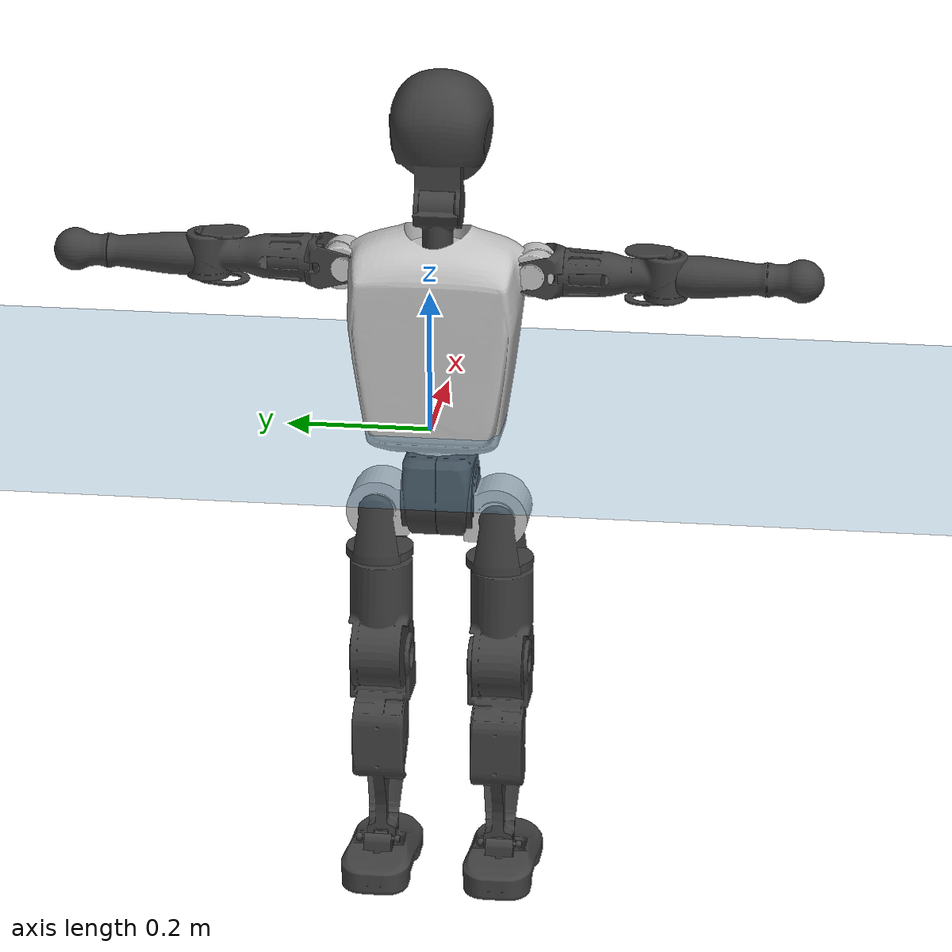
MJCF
<mujoco model="T1">
  <compiler angle="radian" assetdir="assets" balanceinertia="true" inertiafromgeom="false"/>

  <option timestep="0.005" density="1.2" viscosity="2e-05"/>

  <size nkey="1"/>

  <visual>
    <quality shadowsize="8192"/>
    <map shadowclip="0.5"/>
  </visual>

  <default>
    <default class="/">
      <joint armature="0.01" damping="0.01" frictionloss="0.1"/>
      <geom contype="0" conaffinity="0" group="1" solref="-1000 -80"/>
      <site size="0.01 0.005 0.005" group="5"/>
      <general forcelimited="true" biastype="affine" gainprm="25" biasprm="0 -25 -0.6"/>
      <default class="t1">
        <geom rgba="0.25 0.25 0.25 1"/>
        <default class="visual">
          <geom type="mesh" group="2"/>
        </default>
        <default class="collision">
          <geom group="3"/>
        </default>
        <default class="foot">
          <geom size="0.1115 0.05 0.015" type="box" condim="6" group="4" priority="1" solimp="0.015 1 0.015"/>
        </default>
        <default class="reward_collision_sphere">
          <geom group="5" rgba="1 0 0 1"/>
        </default>
      </default>
    </default>
  </default>

  <asset>
    <texture type="skybox" colorspace="auto" name="//unnamed_texture_0" builtin="gradient" rgb1="0.95 0.95 0.95" rgb2="0.95 0.95 0.95" width="100" height="600"/>
    <texture type="2d" colorspace="auto" name="texplane" builtin="checker" rgb1="0.345 0.575 0.748" rgb2="0.345 0.575 0.748" markrgb="1 1 1" width="512" height="512"/>
    <material name="MatPlane" class="/" texture="texplane" texuniform="true" texrepeat="2 2" specular="0.9"/>
    <mesh name="Trunk" class="/" file="Trunk.stl"/>
    <mesh name="H1" class="/" file="H1.stl"/>
    <mesh name="H2" class="/" file="H2.stl"/>
    <mesh name="AL1" class="/" file="AL1.stl"/>
    <mesh name="AL2" class="/" file="AL2.stl"/>
    <mesh name="AL3" class="/" file="AL3.stl"/>
    <mesh name="left_hand_link" class="/" file="left_hand_link.stl"/>
    <mesh name="AR1" class="/" file="AR1.stl"/>
    <mesh name="AR2" class="/" file="AR2.stl"/>
    <mesh name="AR3" class="/" file="AR3.stl"/>
    <mesh name="right_hand_link" class="/" file="right_hand_link.stl"/>
    <mesh name="Waist" class="/" file="Waist.stl"/>
    <mesh name="Hip_Pitch_Left" class="/" file="Hip_Pitch_Left.stl"/>
    <mesh name="Hip_Roll_Left" class="/" file="Hip_Roll_Left.stl"/>
    <mesh name="Hip_Yaw_Left" class="/" file="Hip_Yaw_Left.stl"/>
    <mesh name="Shank_Left" class="/" file="Shank_Left.stl"/>
    <mesh name="Ankle_Cross_Left" class="/" file="Ankle_Cross_Left.stl"/>
    <mesh name="left_foot_link" class="/" file="left_foot_link.stl"/>
    <mesh name="Hip_Pitch_Right" class="/" file="Hip_Pitch_Right.stl"/>
    <mesh name="Hip_Roll_Right" class="/" file="Hip_Roll_Right.stl"/>
    <mesh name="Hip_Yaw_Right" class="/" file="Hip_Yaw_Right.stl"/>
    <mesh name="Shank_Right" class="/" file="Shank_Right.stl"/>
    <mesh name="Ankle_Cross_Right" class="/" file="Ankle_Cross_Right.stl"/>
    <mesh name="right_foot_link" class="/" file="right_foot_link.stl"/>
  </asset>

  <worldbody>
    <geom name="floor" class="/" size="100 100 0.125" type="plane" group="0" material="MatPlane"/>
    <light name="toplight_shadow" class="/" pos="0 0 5" dir="0.0990148 0.0990148 -0.990148" type="directional" ambient="0.04 0.04 0.04" diffuse="0.55 0.55 0.55" specular="0.12 0.12 0.12"/>
    <light name="toplight_fill" class="/" pos="0 0 5" dir="0.0990148 0.0990148 -0.990148" type="directional" castshadow="false" ambient="0.04 0.04 0.04" diffuse="0.3 0.3 0.3" specular="0.08 0.08 0.08"/>
    <body name="trunk" childclass="t1" pos="0.000189198 -0.00223966 -0.000851133" quat="0.999999 0.000477195 0.000134397 -0.00132557">
      <inertial pos="0.0532228 -0.00197731 0.107073" quat="0.999838 -0.00045531 -0.0112727 -0.013999" mass="9.6121" diaginertia="0.091975 0.0259319 0.0632363"/>
      <joint name="//unnamed_joint_0" type="free" armature="0" damping="0" frictionloss="0"/>
      <geom name="//unnamed_geom_1" class="visual" rgba="0.76 0.76 0.76 1" mesh="Trunk"/>
      <geom name="//unnamed_geom_2" class="collision" size="0.0705385 0.0940513 0.141077" pos="0.0595282 0 0.122707" type="box"/>
      <geom name="//unnamed_geom_3" class="reward_collision_sphere" size="0.108159" pos="0.0595282 0 0.102256"/>
      <geom name="//unnamed_geom_4" class="reward_collision_sphere" size="0.0141077" pos="0.0595282 0.0685814 0"/>
      <geom name="//unnamed_geom_5" class="reward_collision_sphere" size="0.0141077" pos="0.0595282 -0.0685814 0"/>
      <geom name="//unnamed_geom_6" class="reward_collision_sphere" size="0.0141077" pos="0.0595282 0.0863318 0.184061"/>
      <geom name="//unnamed_geom_7" class="reward_collision_sphere" size="0.0141077" pos="0.0595282 -0.0863318 0.184061"/>
      <site name="imu" pos="0.0141158 -0.000616759 -0.0140583" size="0.00940513"/>
      <camera name="track" pos="0 -1.61368 0" quat="0.707107 0.707107 0 0" mode="trackcom"/>
      <camera name="ego_camera" pos="0.121041 0 0.429476" quat="-0.5 -0.5 0.5 0.5"/>
      <body name="H1" pos="0.0585474 -0.000279864 0.246317" quat="1 0.00010246 0.000177801 -0.000112684">
        <inertial pos="-0.00185875 -0.000466098 0.0586609" quat="0.76299 -0.0127295 0.00321167 0.646277" mass="0.365435" diaginertia="0.000225338 7.71129e-05 0.000166558"/>
        <joint name="AAHead_yaw" pos="0 0 0" axis="0.00223502 -0.00232713 0.999995" stiffness="0.00773236" range="-1.51164 1.56122" armature="0.0104648" damping="0.00510333" frictionloss="0.105611"/>
        <geom name="//unnamed_geom_8" class="visual" mesh="H1"/>
        <body name="H2" pos="-0.00298922 -0.0015485 0.0630647" quat="1 0.000717386 -0.000245187 -0.000158959">
          <inertial pos="0.00973453 -0.00219402 0.099039" quat="0.988703 0.102714 -0.0844312 -0.0691908" mass="0.532104" diaginertia="0.00191185 0.000637202 0.00191974"/>
          <joint name="Head_pitch" pos="0 0 0" axis="0.00181083 -0.999995 -0.002668" range="-1.23768 0.350518" armature="0.0106873" damping="0" frictionloss="0.0892072"/>
          <geom name="//unnamed_geom_9" class="visual" mesh="H2"/>
          <geom name="//unnamed_geom_10" class="collision" size="0.075241" pos="0.00992137 0 0.112482"/>
          <geom name="//unnamed_geom_11" class="reward_collision_sphere" size="0.0846461" pos="0.0198427 0 0.102256"/>
        </body>
      </body>
      <body name="AL1" pos="0.0576521 0.0850387 0.221778" quat="0.999999 0.000671405 0.000219238 0.00081831">
        <inertial pos="-0.00385853 0.0351911 0.00069823" quat="0.504058 0.495227 -0.504686 0.495952" mass="0.42843" diaginertia="0.00127246 0.000418319 0.000307068"/>
        <joint name="Left_Shoulder_Pitch" pos="0 0 0" axis="-3.93427e-05 0.999854 0.0170727" range="-3.35361 1.26328" armature="0.00959401" damping="0" frictionloss="0.104923"/>
        <geom name="//unnamed_geom_12" class="visual" rgba="0.76 0.76 0.76 1" mesh="AL1"/>
        <body name="AL2" pos="-0.00131806 0.0402764 0.000875831" quat="1 -0.000321502 -0.000239847 -0.000342318">
          <inertial pos="0.00229693 0.0330411 -0.00241718" quat="0.490924 0.511932 -0.48472 0.511826" mass="0.139277" diaginertia="0.000397524 0.000121381 0.00019782"/>
          <joint name="Left_Shoulder_Roll" pos="0 0 0" axis="-0.999997 -0.00217931 0.0014818" range="-1.53036 1.73265" armature="0.0104747" damping="0.00390695" frictionloss="0.0928883"/>
          <geom name="//unnamed_geom_13" class="visual" mesh="AL2"/>
          <body name="AL3" pos="0.00185952 0.0486413 0.00252652" quat="1 -7.29579e-05 -2.0328e-05 -9.80402e-06">
            <inertial pos="0.00219978 0.0666112 0.000733162" quat="0.704216 0.709885 -0.011689 -0.00248948" mass="0.794999" diaginertia="0.0123431 0.00420853 0.000646068"/>
            <joint name="Left_Elbow_Pitch" pos="0 0 0" axis="-0.00237552 -0.99994 -0.0107349" range="-2.31317 2.23711" armature="0.0100209" damping="0.0147552" frictionloss="0.0949732"/>
            <geom name="//unnamed_geom_14" class="visual" mesh="AL3"/>
            <geom name="//unnamed_geom_15" class="collision" size="0.0282154 0.0705385" pos="0 0.040342 0" quat="0.707105 0.707108 0 0" type="cylinder"/>
            <geom name="//unnamed_geom_16" class="reward_collision_sphere" size="0.0338585"/>
            <body name="left_hand_link" pos="0.000614789 0.118273 -0.0020277" quat="0.999999 -0.000894925 -0.000513594 2.06843e-05">
              <inertial pos="-0.00209952 0.0903231 0.000149141" quat="0.707952 0.706261 -1.87309e-05 -0.000204285" mass="0.271581" diaginertia="0.00762339 0.00284904 0.000248921"/>
              <joint name="Left_Elbow_Yaw" pos="0 0 0" axis="0.00184795 0.00168813 0.999997" range="-2.43735 -0.0332979" armature="0.00987636" damping="0.0217099" frictionloss="0.0952432"/>
              <geom name="//unnamed_geom_17" class="visual" mesh="left_hand_link"/>
              <geom name="//unnamed_geom_18" class="collision" size="0.0282154 0.0822949" pos="0 0.104889 0" quat="0.707105 0.707108 0 0" type="cylinder"/>
              <geom name="//unnamed_geom_19" class="reward_collision_sphere" size="0.0470256"/>
              <geom name="//unnamed_geom_20" class="reward_collision_sphere" size="0.0329179" pos="0 0.0887524 0"/>
              <geom name="//unnamed_geom_21" class="reward_collision_sphere" size="0.0329179" pos="0 0.173471 0"/>
            </body>
          </body>
        </body>
      </body>
      <body name="AR1" pos="0.0579567 -0.0872636 0.222706" quat="1 0.000598237 0.000584049 -0.000186784">
        <inertial pos="-0.00336327 -0.0378926 7.74834e-05" quat="0.515425 0.492226 -0.50162 0.490334" mass="0.429885" diaginertia="0.00123651 0.000430994 0.000322362"/>
        <joint name="Right_Shoulder_Pitch" pos="0 0 0" axis="-0.00460801 -0.999872 0.0153115" range="-1.21825 3.26326" armature="0.0106362" damping="0.00288701" frictionloss="0.0843167"/>
        <geom name="//unnamed_geom_22" class="visual" rgba="0.76 0.76 0.76 1" mesh="AR1"/>
        <body name="AR2" pos="0.0015736 -0.0339907 -0.0025169" quat="0.999999 -0.000365162 0.00123747 0.000293315">
          <inertial pos="0.00124327 -0.0315484 -4.58285e-07" quat="0.511778 0.494873 -0.510992 0.481739" mass="0.129082" diaginertia="0.000385146 0.000121698 0.000197975"/>
          <joint name="Right_Shoulder_Roll" pos="0 0 0" axis="-0.999978 -0.000125951 0.00667847" stiffness="0.00259314" range="-1.71243 1.59393" armature="0.00949219" damping="0.0134471" frictionloss="0.10097"/>
          <geom name="//unnamed_geom_23" class="visual" mesh="AR2"/>
          <body name="AR3" pos="0.00233523 -0.048115 -0.00135677" quat="1 -1.52694e-05 1.10497e-05 1.25467e-06">
            <inertial pos="-0.0010705 -0.0713808 -0.00136875" quat="0.710704 0.703381 -0.000235303 -0.0124582" mass="0.854162" diaginertia="0.0124056 0.0044031 0.000720643"/>
            <joint name="Right_Elbow_Pitch" pos="0 0 0" axis="-0.0107511 0.999922 0.00628991" stiffness="0.00428209" range="-2.32113 2.21816" armature="0.00815528" damping="0.00545124" frictionloss="0.106894"/>
            <geom name="//unnamed_geom_24" class="visual" mesh="AR3"/>
            <geom name="//unnamed_geom_25" class="collision" size="0.0282154 0.0705385" pos="0 -0.040342 0" quat="0.707105 0.707108 0 0" type="cylinder"/>
            <geom name="//unnamed_geom_26" class="reward_collision_sphere" size="0.0338585"/>
            <body name="right_hand_link" pos="-5.74309e-07 -0.118417 0.00126074" quat="0.999999 -0.000791108 0.000157701 -0.00108171">
              <inertial pos="-0.00132137 -0.0905168 0.00322023" quat="0.706286 0.707927 9.45707e-05 -3.58884e-05" mass="0.267724" diaginertia="0.00773607 0.00267792 0.000233411"/>
              <joint name="Right_Elbow_Yaw" pos="0 0 0" axis="-0.00520778 -0.0083135 0.999952" range="0.0119948 2.49541" armature="0.0107433" damping="0" frictionloss="0.107347"/>
              <geom name="//unnamed_geom_27" class="visual" mesh="right_hand_link"/>
              <geom name="//unnamed_geom_28" class="collision" size="0.0282154 0.0822949" pos="0 -0.104889 0" quat="0.707105 0.707108 0 0" type="cylinder"/>
              <geom name="//unnamed_geom_29" class="reward_collision_sphere" size="0.0470256"/>
              <geom name="//unnamed_geom_30" class="reward_collision_sphere" size="0.0329179" pos="0 -0.0887524 0"/>
              <geom name="//unnamed_geom_31" class="reward_collision_sphere" size="0.0329179" pos="0 -0.173471 0"/>
            </body>
          </body>
        </body>
      </body>
      <body name="Waist" pos="0.0624235 -0.0042004 -0.115989" quat="1 -0.000197767 0.000314317 -0.000283883">
        <inertial pos="8.31947e-05 -0.000602211 0.00672265" quat="0.983288 0.000240683 -0.181776 -0.0100867" mass="2.10896" diaginertia="0.00499848 0.00179805 0.00517199"/>
        <joint name="Waist" pos="0 0 0" axis="0.00334297 -0.0114188 0.999929" range="-1.58426 1.51962" armature="0.0092403" damping="0.021649" frictionloss="0.106427"/>
        <geom name="//unnamed_geom_32" class="visual" mesh="Waist"/>
        <body name="Hip_Pitch_Left" pos="0.000387812 0.085646 8.20713e-05" quat="1 -0.000355962 -0.000299278 -0.000665731">
          <inertial pos="0.00127576 -0.00856413 -0.0178765" quat="0.975024 0.22164 0.0142704 0.000680561" mass="0.86092" diaginertia="0.00172773 0.00050773 0.00141714"/>
          <joint name="Left_Hip_Pitch" pos="0 0 0" axis="-0.00542788 0.999961 0.00692687" range="-1.79743 1.61139" armature="0.0104214" damping="0" frictionloss="0.0944585"/>
          <geom name="//unnamed_geom_33" class="visual" rgba="0.76 0.76 0.76 1" mesh="Hip_Pitch_Left"/>
          <body name="Hip_Roll_Left" pos="0.000150209 0.000885382 -0.0185453" quat="1 3.65947e-05 4.49983e-05 -0.00097334">
            <inertial pos="-0.0017111 0.000355797 -0.0554775" quat="0.707248 -0.00877746 -0.00326747 0.706904" mass="0.314531" diaginertia="0.00168706 0.000503466 0.00056113"/>
            <joint name="Left_Hip_Roll" pos="0 0 0" axis="-0.999968 -0.00193673 0.0077797" stiffness="0.00750472" range="-1.53412 0.194605" armature="0.0083965" damping="0.016635" frictionloss="0.0967853"/>
            <geom name="//unnamed_geom_34" class="visual" mesh="Hip_Roll_Left"/>
            <geom name="//unnamed_geom_35" class="reward_collision_sphere" size="0.0517282"/>
            <body name="Hip_Yaw_Left" pos="0.00287867 -0.00119651 -0.0867019" quat="1 0.000560017 -8.12396e-05 -2.49055e-05">
              <inertial pos="-0.00774058 -0.000533805 -0.0909749" quat="0.690775 -0.0278611 -0.0336942 0.721747" mass="1.71022" diaginertia="0.0248258 0.00848733 0.00281412"/>
              <joint name="Left_Hip_Yaw" pos="0 0 0" axis="-8.73597e-05 1.51192e-05 -1" range="-1.06767 1.01469" armature="0.00945324" damping="0.0187006" frictionloss="0.089326"/>
              <geom name="//unnamed_geom_36" class="visual" mesh="Hip_Yaw_Left"/>
              <geom name="//unnamed_geom_37" class="collision" size="0.0470256 0.075241" type="cylinder"/>
              <body name="Shank_Left" pos="-0.0136183 -0.00266313 -0.139716" quat="1 1.50196e-06 5.86007e-05 -0.000189339">
                <inertial pos="-0.0071152 -0.0021418 -0.126117" quat="0.996793 -0.00785349 -0.0261511 0.0752144" mass="1.53165" diaginertia="0.0345288 0.0121742 0.00208219"/>
                <joint name="Left_Knee_Pitch" pos="0 0 0" axis="-6.38077e-05 1 1.1606e-05" range="0.0188271 2.29353" armature="0.01055" damping="0" frictionloss="0.0943324"/>
                <geom name="//unnamed_geom_38" class="visual" mesh="Shank_Left"/>
                <geom name="//unnamed_geom_39" class="collision" size="0.0470256 0.0705385" pos="0 0 -0.122707" type="cylinder"/>
                <geom name="//unnamed_geom_40" class="reward_collision_sphere" size="0.0611333"/>
                <body name="Ankle_Cross_Left" pos="0.00188009 0.00238344 -0.289618" quat="0.999999 0.000964399 -0.000584909 -0.000512791">
                  <inertial pos="-0.00563059 -0.00149105 -0.00717345" quat="0.445321 0.539331 0.557439 0.447296" mass="0.0607755" diaginertia="2.78381e-05 9.09664e-06 1.31707e-05"/>
                  <joint name="Left_Ankle_Pitch" pos="0 0 0" axis="0.00477161 0.999922 -0.0115394" range="-0.882848 0.362498" armature="0.00883828" damping="0.0112276" frictionloss="0.0894118"/>
                  <geom name="//unnamed_geom_41" class="visual" mesh="Ankle_Cross_Left"/>
                  <body name="left_foot_link" pos="-0.00278474 -0.0023688 -0.0133298" quat="1 0.000252323 0.000135175 0.000177091">
                    <inertial pos="0.00220771 0.00121429 -0.00766705" quat="8.49131e-06 0.620742 -2.91114e-05 0.784015" mass="0.563271" diaginertia="0.00260808 0.000808508 0.00240575"/>
                    <joint name="Left_Ankle_Roll" pos="0 0 0" axis="-0.999981 0.00384803 -0.0048228" stiffness="0.00539102" range="-0.450634 0.445347" armature="0.00809148" damping="0" frictionloss="0.0920931"/>
                    <geom name="//unnamed_geom_42" class="visual" mesh="left_foot_link"/>
                    <geom name="left_foot" class="foot" size="0.0843502 0.043938 0.0144366" pos="0.00992137 0 -0.0153384"/>
                    <geom name="//unnamed_geom_44" class="reward_collision_sphere" size="0.0489067" pos="0.00992137 0 -0.0153384"/>
                    <geom name="//unnamed_geom_45" class="reward_collision_sphere" size="0.0282154" pos="0.094253 -0.0185573 -0.0153384"/>
                    <geom name="//unnamed_geom_46" class="reward_collision_sphere" size="0.0282154" pos="-0.0694496 -0.0185573 -0.0153384"/>
                    <site name="left_foot" class="foot" pos="0.00992137 0 -0.0153384" size="0.00940513"/>
                  </body>
                </body>
              </body>
            </body>
          </body>
        </body>
        <body name="Hip_Pitch_Right" pos="-0.00312043 -0.0826941 -0.00222511" quat="1 -2.58966e-05 0.000569931 0.00069094">
          <inertial pos="0.00123095 0.00486339 -0.0182521" quat="0.971051 -0.238668 0.00973489 0.00151505" mass="0.852997" diaginertia="0.00168414 0.000482277 0.00134144"/>
          <joint name="Right_Hip_Pitch" pos="0 0 0" axis="-0.00668309 -0.999962 0.00552575" range="-1.62936 1.80104" armature="0.00842029" damping="0.00510985" frictionloss="0.103436"/>
          <geom name="//unnamed_geom_47" class="visual" rgba="0.76 0.76 0.76 1" mesh="Hip_Pitch_Right"/>
          <body name="Hip_Roll_Right" pos="-0.000838317 -0.00222508 -0.0219198" quat="1 -0.000178808 -0.000204748 -0.000243541">
            <inertial pos="-0.00120032 0.00169927 -0.0568596" quat="0.711169 -0.00723076 0.0012009 0.702983" mass="0.331879" diaginertia="0.00174956 0.000526493 0.000582472"/>
            <joint name="Right_Hip_Roll" pos="0 0 0" axis="-0.999998 0.00192119 -0.000808085" range="-0.184422 1.5672" armature="0.0102673" damping="0.00398579" frictionloss="0.0891334"/>
            <geom name="//unnamed_geom_48" class="visual" mesh="Hip_Roll_Right"/>
            <geom name="//unnamed_geom_49" class="reward_collision_sphere" size="0.0517282"/>
            <body name="Hip_Yaw_Right" pos="-0.000136827 -0.00346232 -0.0838" quat="1 0.000324228 0.000178119 0.000196206">
              <inertial pos="-0.00431265 -0.00267186 -0.0913734" quat="0.713971 -0.0317148 -0.0335877 0.69865" mass="1.82401" diaginertia="0.0258014 0.00867072 0.00290933"/>
              <joint name="Right_Hip_Yaw" pos="0 0 0" axis="-0.00142975 2.38313e-05 -0.999999" range="-0.996773 0.946097" armature="0.00876648" damping="0.0221149" frictionloss="0.104702"/>
              <geom name="//unnamed_geom_50" class="visual" mesh="Hip_Yaw_Right"/>
              <geom name="//unnamed_geom_51" class="collision" size="0.0470256 0.075241" type="cylinder"/>
              <body name="Shank_Right" pos="-0.0107265 0.0017174 -0.136784" quat="0.999999 0.000300958 -0.000280916 -0.00114588">
                <inertial pos="-0.00575225 0.00295949 -0.123473" quat="0.998689 -0.00726595 -0.0330944 -0.0383636" mass="1.43688" diaginertia="0.0327157 0.0120903 0.00223672"/>
                <joint name="Right_Knee_Pitch" pos="0 0 0" axis="-0.00628644 -0.999973 0.00380558" range="-2.28405 -0.061912" armature="0.00981142" damping="0.020556" frictionloss="0.0878367"/>
                <geom name="//unnamed_geom_52" class="visual" mesh="Shank_Right"/>
                <geom name="//unnamed_geom_53" class="collision" size="0.0470256 0.0705385" pos="0 0 -0.122707" type="cylinder"/>
                <geom name="//unnamed_geom_54" class="reward_collision_sphere" size="0.0611333"/>
                <body name="Ankle_Cross_Right" pos="0.00324529 -0.00316313 -0.286074" quat="1 0.00032771 -0.000591434 0.000128341">
                  <inertial pos="-0.00495916 -0.000581905 -0.0054317" quat="0.445117 0.541512 0.557952 0.444213" mass="0.0603694" diaginertia="2.79761e-05 8.80324e-06 1.22626e-05"/>
                  <joint name="Right_Ankle_Pitch" pos="0 0 0" axis="0.00245167 -0.999995 -0.00200154" range="-0.404174 0.853625" armature="0.00902805" damping="0.00712725" frictionloss="0.0986664"/>
                  <geom name="//unnamed_geom_55" class="visual" mesh="Ankle_Cross_Right"/>
                  <body name="right_foot_link" pos="0.000118144 -0.00299999 -0.014124" quat="1 3.57531e-05 -4.16496e-05 6.38293e-05">
                    <inertial pos="0.00089379 0.000838893 -0.012056" quat="3.94885e-07 0.620756 -5.59701e-07 0.784004" mass="0.564662" diaginertia="0.00256821 0.000820187 0.00236585"/>
                    <joint name="Right_Ankle_Roll" pos="0 0 0" axis="-0.999935 -0.0109679 -0.00324186" range="-0.412452 0.42934" armature="0.0107064" damping="0.0109305" frictionloss="0.0807576"/>
                    <geom name="//unnamed_geom_56" class="visual" mesh="right_foot_link"/>
                    <geom name="right_foot" class="foot" size="0.0702776 0.0422372 0.0139101" pos="0.00992137 0 -0.0153384"/>
                    <geom name="//unnamed_geom_58" class="reward_collision_sphere" size="0.0376205"/>
                    <geom name="//unnamed_geom_59" class="reward_collision_sphere" size="0.0282154" pos="0.00992137 0 -0.0153384"/>
                    <geom name="//unnamed_geom_60" class="reward_collision_sphere" size="0.0282154" pos="0.094253 0.0185573 -0.0153384"/>
                    <geom name="//unnamed_geom_61" class="reward_collision_sphere" size="0.0282154" pos="-0.0694496 0.0185573 -0.0153384"/>
                    <site name="right_foot" class="foot" pos="0.00992137 0 -0.0153384" size="0.00940513"/>
                  </body>
                </body>
              </body>
            </body>
          </body>
        </body>
      </body>
    </body>
  </worldbody>

  <contact>
    <pair class="/" geom1="floor" geom2="left_foot" name="//unnamed_contact_0"/>
    <pair class="/" geom1="floor" geom2="right_foot" name="//unnamed_contact_1"/>
  </contact>

  <actuator>
    <general name="AAHead_yaw" class="/" joint="AAHead_yaw" forcerange="-5.97036 5.97036" gainprm="22.867" biasprm="0 -22.867 -0.533934"/>
    <general name="Head_pitch" class="/" joint="Head_pitch" forcerange="-7.27542 7.27542" gainprm="22.867" biasprm="0 -22.867 -0.533934"/>
    <general name="Left_Shoulder_Pitch" class="/" joint="Left_Shoulder_Pitch" forcerange="-17.3836 17.3836" gainprm="22.867" biasprm="0 -22.867 -0.533934"/>
    <general name="Left_Shoulder_Roll" class="/" joint="Left_Shoulder_Roll" forcerange="-18.522 18.522" gainprm="22.867" biasprm="0 -22.867 -0.533934"/>
    <general name="Left_Elbow_Pitch" class="/" joint="Left_Elbow_Pitch" forcerange="-17.5451 17.5451" gainprm="22.867" biasprm="0 -22.867 -0.533934"/>
    <general name="Left_Elbow_Yaw" class="/" joint="Left_Elbow_Yaw" forcerange="-17.0314 17.0314" gainprm="22.867" biasprm="0 -22.867 -0.533934"/>
    <general name="Right_Shoulder_Pitch" class="/" joint="Right_Shoulder_Pitch" forcerange="-17.0294 17.0294" gainprm="22.867" biasprm="0 -22.867 -0.533934"/>
    <general name="Right_Shoulder_Roll" class="/" joint="Right_Shoulder_Roll" forcerange="-16.3041 16.3041" gainprm="22.867" biasprm="0 -22.867 -0.533934"/>
    <general name="Right_Elbow_Pitch" class="/" joint="Right_Elbow_Pitch" forcerange="-16.9118 16.9118" gainprm="22.867" biasprm="0 -22.867 -0.533934"/>
    <general name="Right_Elbow_Yaw" class="/" joint="Right_Elbow_Yaw" forcerange="-16.9628 16.9628" gainprm="22.867" biasprm="0 -22.867 -0.533934"/>
    <general name="Waist" class="/" joint="Waist" forcerange="-25.6962 25.6962" gainprm="22.867" biasprm="0 -22.867 -0.533934"/>
    <general name="Left_Hip_Pitch" class="/" joint="Left_Hip_Pitch" forcerange="-41.0096 41.0096" gainprm="22.867" biasprm="0 -22.867 -0.533934"/>
    <general name="Left_Hip_Roll" class="/" joint="Left_Hip_Roll" forcerange="-28.182 28.182" gainprm="22.867" biasprm="0 -22.867 -0.533934"/>
    <general name="Left_Hip_Yaw" class="/" joint="Left_Hip_Yaw" forcerange="-28.7541 28.7541" gainprm="22.867" biasprm="0 -22.867 -0.533934"/>
    <general name="Left_Knee_Pitch" class="/" joint="Left_Knee_Pitch" forcerange="-50.398 50.398" gainprm="22.867" biasprm="0 -22.867 -0.533934"/>
    <general name="Left_Ankle_Pitch" class="/" joint="Left_Ankle_Pitch" forcerange="-20.0639 20.0639" gainprm="22.867" biasprm="0 -22.867 -0.533934"/>
    <general name="Left_Ankle_Roll" class="/" joint="Left_Ankle_Roll" forcerange="-13.4033 13.4033" gainprm="22.867" biasprm="0 -22.867 -0.533934"/>
    <general name="Right_Hip_Pitch" class="/" joint="Right_Hip_Pitch" forcerange="-41.8889 41.8889" gainprm="22.867" biasprm="0 -22.867 -0.533934"/>
    <general name="Right_Hip_Roll" class="/" joint="Right_Hip_Roll" forcerange="-25.2735 25.2735" gainprm="22.867" biasprm="0 -22.867 -0.533934"/>
    <general name="Right_Hip_Yaw" class="/" joint="Right_Hip_Yaw" forcerange="-30.6214 30.6214" gainprm="22.867" biasprm="0 -22.867 -0.533934"/>
    <general name="Right_Knee_Pitch" class="/" joint="Right_Knee_Pitch" forcerange="-56.9344 56.9344" gainprm="22.867" biasprm="0 -22.867 -0.533934"/>
    <general name="Right_Ankle_Pitch" class="/" joint="Right_Ankle_Pitch" forcerange="-18.7533 18.7533" gainprm="22.867" biasprm="0 -22.867 -0.533934"/>
    <general name="Right_Ankle_Roll" class="/" joint="Right_Ankle_Roll" forcerange="-13.8516 13.8516" gainprm="22.867" biasprm="0 -22.867 -0.533934"/>
  </actuator>

  <sensor>
    <gyro site="imu" name="imu_angular_velocity"/>
    <velocimeter site="imu" name="imu_linear_velocity"/>
    <framelinvel objtype="site" objname="left_foot" name="left_foot_global_linear_velocity"/>
    <framelinvel objtype="site" objname="right_foot" name="right_foot_global_linear_velocity"/>
  </sensor>

  <keyframe>
    <key name="home" qpos="0 0 0.6385 1 0 0 0 0 0 0 1.4 0 -0.4 0 -1.4 0 0.4 0 -0.4 0 0 0.8 -0.4 0 0.4 0 0 -0.8 0.4 0"/>
  </keyframe>
</mujoco>
